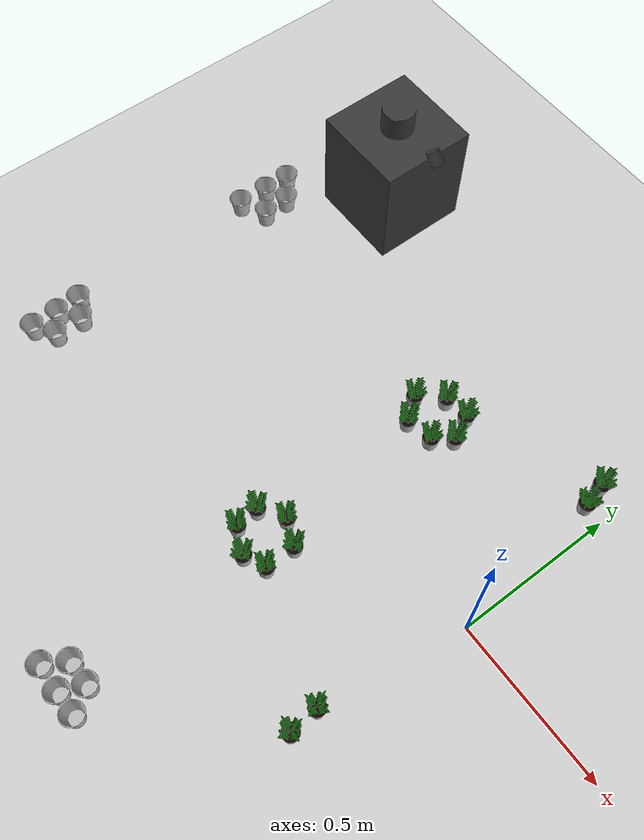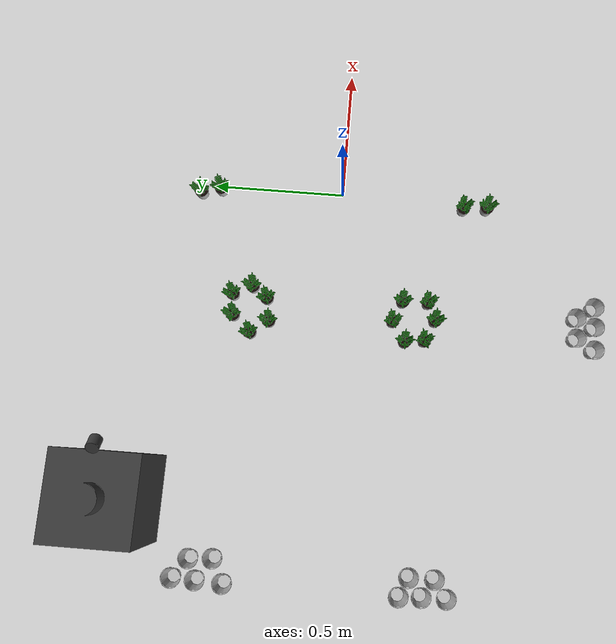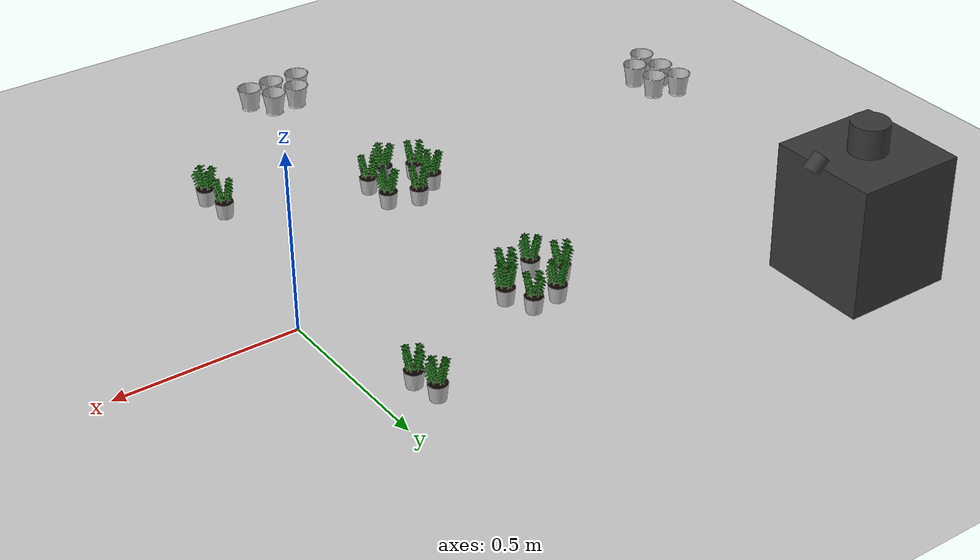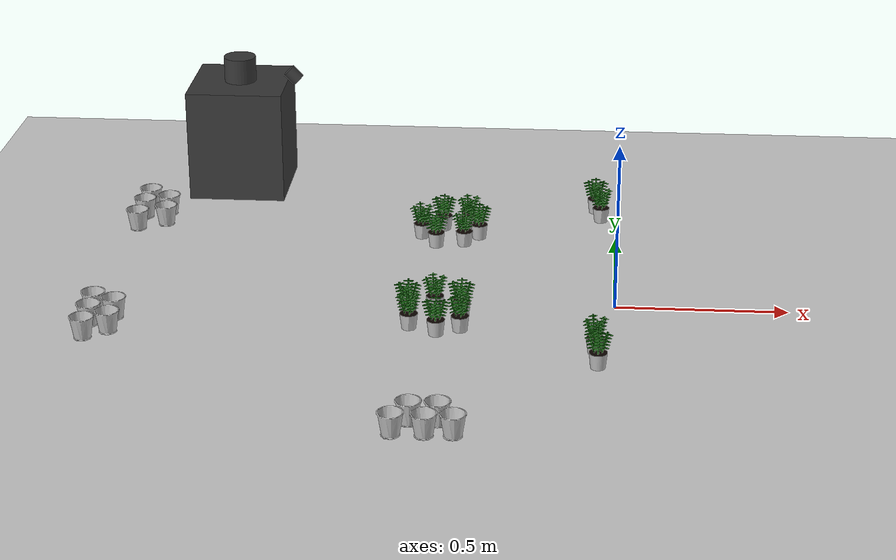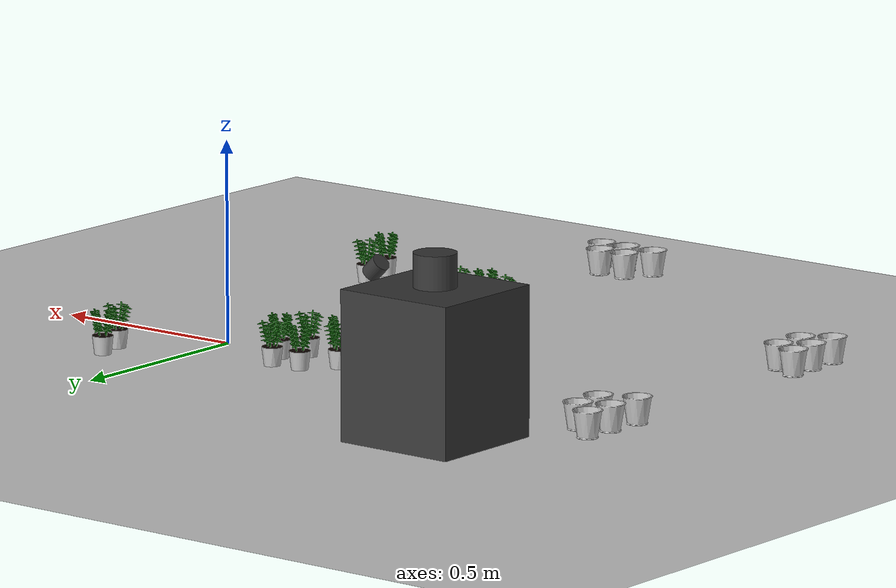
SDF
<sdf version="1.10">
 <world name="empty">
  <model name="ground_plane">
   <static>true</static>
   <link name="link">
    <collision name="collision">
     <geometry><plane><normal>0 0 1</normal><size>100 100</size></plane></geometry>
    </collision>
    <visual name="visual">
     <geometry><plane><normal>0 0 1</normal><size>100 100</size></plane></geometry>
     <material>
      <ambient>0.800000012 0.800000012 0.800000012 1</ambient>
      <diffuse>0.800000012 0.800000012 0.800000012 1</diffuse>
      <specular>0.800000012 0.800000012 0.800000012 1</specular>
     </material>
    </visual>
    <inertial>
     <mass>1</mass>
     <inertia><ixx>1</ixx><ixy>0</ixy><ixz>0</ixz><iyy>1</iyy><iyz>0</iyz><izz>1</izz></inertia>
    </inertial>
   </link>
  </model>
  <model name="pot">
   <link name="link">
    <pose>0 0 0.10000000000000001 0 0 0</pose>
    <collision name="collision">
     <geometry>
      <mesh>
       <uri>file:///home/arusso/dev/coupe/ws_0/install/champi_simulator/share/champi_simulator/models/pot/meshes/model.dae</uri>
      </mesh>
     </geometry>
    </collision>
    <visual name="visual">
     <geometry>
      <mesh>
       <uri>file:///home/arusso/dev/coupe/ws_0/install/champi_simulator/share/champi_simulator/models/pot/meshes/model.dae</uri>
      </mesh>
     </geometry>
    </visual>
    <inertial>
     <mass>1</mass>
     <inertia><ixx>1</ixx><ixy>0</ixy><ixz>0</ixz><iyy>1</iyy><iyz>0</iyz><izz>1</izz></inertia>
    </inertial>
   </link>
   <pose>-0.403499 -0.95184500000000005 -0.019989 -0.00069220900000000005 0.00014280300000000005 -4.0547600000000025e-08</pose>
   <static>false</static>
  </model>
  <model name="pot_0">
   <link name="link">
    <pose>0 0 0.10000000000000001 0 0 0</pose>
    <collision name="collision">
     <geometry>
      <mesh>
       <uri>file:///home/arusso/dev/coupe/ws_0/install/champi_simulator/share/champi_simulator/models/pot/meshes/model.dae</uri>
      </mesh>
     </geometry>
    </collision>
    <visual name="visual">
     <geometry>
      <mesh>
       <uri>file:///home/arusso/dev/coupe/ws_0/install/champi_simulator/share/champi_simulator/models/pot/meshes/model.dae</uri>
      </mesh>
     </geometry>
    </visual>
    <inertial>
     <mass>1</mass>
     <inertia><ixx>1</ixx><ixy>0</ixy><ixz>0</ixz><iyy>1</iyy><iyz>0</iyz><izz>1</izz></inertia>
    </inertial>
   </link>
   <pose>-0.47604400000000002 -0.95447199999999999 -0.019989099999999999 -0.00069144900000000001 0.00014281299999999999 -1.08879e-06</pose>
   <static>false</static>
  </model>
  <model name="pot_1">
   <link name="link">
    <pose>0 0 0.10000000000000001 0 0 0</pose>
    <collision name="collision">
     <geometry>
      <mesh>
       <uri>file:///home/arusso/dev/coupe/ws_0/install/champi_simulator/share/champi_simulator/models/pot/meshes/model.dae</uri>
      </mesh>
     </geometry>
    </collision>
    <visual name="visual">
     <geometry>
      <mesh>
       <uri>file:///home/arusso/dev/coupe/ws_0/install/champi_simulator/share/champi_simulator/models/pot/meshes/model.dae</uri>
      </mesh>
     </geometry>
    </visual>
    <inertial>
     <mass>1</mass>
     <inertia><ixx>1</ixx><ixy>0</ixy><ixz>0</ixz><iyy>1</iyy><iyz>0</iyz><izz>1</izz></inertia>
    </inertial>
   </link>
   <pose>-0.55947499999999994 -0.95512300000000006 -0.019989 -0.00069220900000000005 0.00014280300000000005 -4.0547600000000025e-08</pose>
   <static>false</static>
  </model>
  <model name="pot_2">
   <link name="link">
    <pose>0 0 0.10000000000000001 0 0 0</pose>
    <collision name="collision">
     <geometry>
      <mesh>
       <uri>file:///home/arusso/dev/coupe/ws_0/install/champi_simulator/share/champi_simulator/models/pot/meshes/model.dae</uri>
      </mesh>
     </geometry>
    </collision>
    <visual name="visual">
     <geometry>
      <mesh>
       <uri>file:///home/arusso/dev/coupe/ws_0/install/champi_simulator/share/champi_simulator/models/pot/meshes/model.dae</uri>
      </mesh>
     </geometry>
    </visual>
    <inertial>
     <mass>1</mass>
     <inertia><ixx>1</ixx><ixy>0</ixy><ixz>0</ixz><iyy>1</iyy><iyz>0</iyz><izz>1</izz></inertia>
    </inertial>
   </link>
   <pose>-0.52089099999999999 -0.88975899999999997 -0.019989 -0.00069220900000000005 0.00014280300000000005 -4.0547600000000025e-08</pose>
   <static>false</static>
  </model>
  <model name="pot_3">
   <link name="link">
    <pose>0 0 0.10000000000000001 0 0 0</pose>
    <collision name="collision">
     <geometry>
      <mesh>
       <uri>file:///home/arusso/dev/coupe/ws_0/install/champi_simulator/share/champi_simulator/models/pot/meshes/model.dae</uri>
      </mesh>
     </geometry>
    </collision>
    <visual name="visual">
     <geometry>
      <mesh>
       <uri>file:///home/arusso/dev/coupe/ws_0/install/champi_simulator/share/champi_simulator/models/pot/meshes/model.dae</uri>
      </mesh>
     </geometry>
    </visual>
    <inertial>
     <mass>1</mass>
     <inertia><ixx>1</ixx><ixy>0</ixy><ixz>0</ixz><iyy>1</iyy><iyz>0</iyz><izz>1</izz></inertia>
    </inertial>
   </link>
   <pose>-0.446768 -0.88781500000000002 -0.019989 -0.00069220900000000005 0.00014280300000000005 -4.0547600000000025e-08</pose>
   <static>false</static>
  </model>
  <model name="pot_5">
   <link name="link">
    <pose>0 0 0.10000000000000001 0 0 0</pose>
    <collision name="collision">
     <geometry>
      <mesh>
       <uri>file:///home/arusso/dev/coupe/ws_0/install/champi_simulator/share/champi_simulator/models/pot/meshes/model.dae</uri>
      </mesh>
     </geometry>
    </collision>
    <visual name="visual">
     <geometry>
      <mesh>
       <uri>file:///home/arusso/dev/coupe/ws_0/install/champi_simulator/share/champi_simulator/models/pot/meshes/model.dae</uri>
      </mesh>
     </geometry>
    </visual>
    <inertial>
     <mass>1</mass>
     <inertia><ixx>1</ixx><ixy>0</ixy><ixz>0</ixz><iyy>1</iyy><iyz>0</iyz><izz>1</izz></inertia>
    </inertial>
   </link>
   <pose>-1.39436 -0.33459699999999998 -0.019989 -0.00069220900000000005 0.00014280300000000005 -4.0547600000000025e-08</pose>
   <static>false</static>
  </model>
  <model name="pot_6">
   <link name="link">
    <pose>0 0 0.10000000000000001 0 0 0</pose>
    <collision name="collision">
     <geometry>
      <mesh>
       <uri>file:///home/arusso/dev/coupe/ws_0/install/champi_simulator/share/champi_simulator/models/pot/meshes/model.dae</uri>
      </mesh>
     </geometry>
    </collision>
    <visual name="visual">
     <geometry>
      <mesh>
       <uri>file:///home/arusso/dev/coupe/ws_0/install/champi_simulator/share/champi_simulator/models/pot/meshes/model.dae</uri>
      </mesh>
     </geometry>
    </visual>
    <inertial>
     <mass>1</mass>
     <inertia><ixx>1</ixx><ixy>0</ixy><ixz>0</ixz><iyy>1</iyy><iyz>0</iyz><izz>1</izz></inertia>
    </inertial>
   </link>
   <pose>-1.3934500000000001 -0.422989 -0.019989 -0.00069220900000000005 0.00014280300000000005 -4.0547600000000025e-08</pose>
   <static>false</static>
  </model>
  <model name="pot_7">
   <link name="link">
    <pose>0 0 0.10000000000000001 0 0 0</pose>
    <collision name="collision">
     <geometry>
      <mesh>
       <uri>file:///home/arusso/dev/coupe/ws_0/install/champi_simulator/share/champi_simulator/models/pot/meshes/model.dae</uri>
      </mesh>
     </geometry>
    </collision>
    <visual name="visual">
     <geometry>
      <mesh>
       <uri>file:///home/arusso/dev/coupe/ws_0/install/champi_simulator/share/champi_simulator/models/pot/meshes/model.dae</uri>
      </mesh>
     </geometry>
    </visual>
    <inertial>
     <mass>1</mass>
     <inertia><ixx>1</ixx><ixy>0</ixy><ixz>0</ixz><iyy>1</iyy><iyz>0</iyz><izz>1</izz></inertia>
    </inertial>
   </link>
   <pose>-1.45492 -0.38141199999999997 -0.0199889 -0.00069295299999999995 0.00014295299999999994 0.00021204300000000006</pose>
   <static>false</static>
  </model>
  <model name="pot_8">
   <link name="link">
    <pose>0 0 0.10000000000000001 0 0 0</pose>
    <collision name="collision">
     <geometry>
      <mesh>
       <uri>file:///home/arusso/dev/coupe/ws_0/install/champi_simulator/share/champi_simulator/models/pot/meshes/model.dae</uri>
      </mesh>
     </geometry>
    </collision>
    <visual name="visual">
     <geometry>
      <mesh>
       <uri>file:///home/arusso/dev/coupe/ws_0/install/champi_simulator/share/champi_simulator/models/pot/meshes/model.dae</uri>
      </mesh>
     </geometry>
    </visual>
    <inertial>
     <mass>1</mass>
     <inertia><ixx>1</ixx><ixy>0</ixy><ixz>0</ixz><iyy>1</iyy><iyz>0</iyz><izz>1</izz></inertia>
    </inertial>
   </link>
   <pose>-1.45387 -0.46632400000000002 -0.019989 -0.00069220900000000005 0.00014280300000000005 -4.0547600000000025e-08</pose>
   <static>false</static>
  </model>
  <model name="pot_9">
   <link name="link">
    <pose>0 0 0.10000000000000001 0 0 0</pose>
    <collision name="collision">
     <geometry>
      <mesh>
       <uri>file:///home/arusso/dev/coupe/ws_0/install/champi_simulator/share/champi_simulator/models/pot/meshes/model.dae</uri>
      </mesh>
     </geometry>
    </collision>
    <visual name="visual">
     <geometry>
      <mesh>
       <uri>file:///home/arusso/dev/coupe/ws_0/install/champi_simulator/share/champi_simulator/models/pot/meshes/model.dae</uri>
      </mesh>
     </geometry>
    </visual>
    <inertial>
     <mass>1</mass>
     <inertia><ixx>1</ixx><ixy>0</ixy><ixz>0</ixz><iyy>1</iyy><iyz>0</iyz><izz>1</izz></inertia>
    </inertial>
   </link>
   <pose>-1.4593499999999999 -0.30384 -0.019989 -0.00069220900000000005 0.00014280300000000005 -4.0547600000000025e-08</pose>
   <static>false</static>
  </model>
  <model name="pot_10">
   <link name="link">
    <pose>0 0 0.10000000000000001 0 0 0</pose>
    <collision name="collision">
     <geometry>
      <mesh>
       <uri>file:///home/arusso/dev/coupe/ws_0/install/champi_simulator/share/champi_simulator/models/pot/meshes/model.dae</uri>
      </mesh>
     </geometry>
    </collision>
    <visual name="visual">
     <geometry>
      <mesh>
       <uri>file:///home/arusso/dev/coupe/ws_0/install/champi_simulator/share/champi_simulator/models/pot/meshes/model.dae</uri>
      </mesh>
     </geometry>
    </visual>
    <inertial>
     <mass>1</mass>
     <inertia><ixx>1</ixx><ixy>0</ixy><ixz>0</ixz><iyy>1</iyy><iyz>0</iyz><izz>1</izz></inertia>
    </inertial>
   </link>
   <pose>-1.46313 0.29849799999999999 -0.019989 -0.00069220900000000005 0.00014280300000000005 -4.0547600000000025e-08</pose>
   <static>false</static>
  </model>
  <model name="pot_11">
   <link name="link">
    <pose>0 0 0.10000000000000001 0 0 0</pose>
    <collision name="collision">
     <geometry>
      <mesh>
       <uri>file:///home/arusso/dev/coupe/ws_0/install/champi_simulator/share/champi_simulator/models/pot/meshes/model.dae</uri>
      </mesh>
     </geometry>
    </collision>
    <visual name="visual">
     <geometry>
      <mesh>
       <uri>file:///home/arusso/dev/coupe/ws_0/install/champi_simulator/share/champi_simulator/models/pot/meshes/model.dae</uri>
      </mesh>
     </geometry>
    </visual>
    <inertial>
     <mass>1</mass>
     <inertia><ixx>1</ixx><ixy>0</ixy><ixz>0</ixz><iyy>1</iyy><iyz>0</iyz><izz>1</izz></inertia>
    </inertial>
   </link>
   <pose>-1.4589799999999999 0.39272800000000002 -0.0199889 -0.00069269900000000018 0.00014398599999999995 -0.0041653999999999997</pose>
   <static>false</static>
  </model>
  <model name="pot_12">
   <link name="link">
    <pose>0 0 0.10000000000000001 0 0 0</pose>
    <collision name="collision">
     <geometry>
      <mesh>
       <uri>file:///home/arusso/dev/coupe/ws_0/install/champi_simulator/share/champi_simulator/models/pot/meshes/model.dae</uri>
      </mesh>
     </geometry>
    </collision>
    <visual name="visual">
     <geometry>
      <mesh>
       <uri>file:///home/arusso/dev/coupe/ws_0/install/champi_simulator/share/champi_simulator/models/pot/meshes/model.dae</uri>
      </mesh>
     </geometry>
    </visual>
    <inertial>
     <mass>1</mass>
     <inertia><ixx>1</ixx><ixy>0</ixy><ixz>0</ixz><iyy>1</iyy><iyz>0</iyz><izz>1</izz></inertia>
    </inertial>
   </link>
   <pose>-1.4570399999999999 0.47462300000000002 -0.019989 -0.00069220900000000005 0.00014280300000000005 -4.0547600000000025e-08</pose>
   <static>false</static>
  </model>
  <model name="pot_13">
   <link name="link">
    <pose>0 0 0.10000000000000001 0 0 0</pose>
    <collision name="collision">
     <geometry>
      <mesh>
       <uri>file:///home/arusso/dev/coupe/ws_0/install/champi_simulator/share/champi_simulator/models/pot/meshes/model.dae</uri>
      </mesh>
     </geometry>
    </collision>
    <visual name="visual">
     <geometry>
      <mesh>
       <uri>file:///home/arusso/dev/coupe/ws_0/install/champi_simulator/share/champi_simulator/models/pot/meshes/model.dae</uri>
      </mesh>
     </geometry>
    </visual>
    <inertial>
     <mass>1</mass>
     <inertia><ixx>1</ixx><ixy>0</ixy><ixz>0</ixz><iyy>1</iyy><iyz>0</iyz><izz>1</izz></inertia>
    </inertial>
   </link>
   <pose>-1.38368 0.339557 -0.019989 -0.00069220900000000005 0.00014280300000000005 -4.0547600000000025e-08</pose>
   <static>false</static>
  </model>
  <model name="pot_14">
   <link name="link">
    <pose>0 0 0.10000000000000001 0 0 0</pose>
    <collision name="collision">
     <geometry>
      <mesh>
       <uri>file:///home/arusso/dev/coupe/ws_0/install/champi_simulator/share/champi_simulator/models/pot/meshes/model.dae</uri>
      </mesh>
     </geometry>
    </collision>
    <visual name="visual">
     <geometry>
      <mesh>
       <uri>file:///home/arusso/dev/coupe/ws_0/install/champi_simulator/share/champi_simulator/models/pot/meshes/model.dae</uri>
      </mesh>
     </geometry>
    </visual>
    <inertial>
     <mass>1</mass>
     <inertia><ixx>1</ixx><ixy>0</ixy><ixz>0</ixz><iyy>1</iyy><iyz>0</iyz><izz>1</izz></inertia>
    </inertial>
   </link>
   <pose>-1.3895200000000001 0.42288199999999998 -0.019989 -0.00069220900000000005 0.00014280300000000005 -4.0547600000000025e-08</pose>
   <static>false</static>
  </model>
  <model name="plante_fragile_4">
   <link name="link">
    <pose>0 0 0.10000000000000001 0 0 0</pose>
    <collision name="collision">
     <geometry>
      <mesh>
       <uri>file:///home/arusso/dev/coupe/ws_0/install/champi_simulator/share/champi_simulator/models/plante_fragile/meshes/model.dae</uri>
      </mesh>
     </geometry>
    </collision>
    <visual name="visual">
     <geometry>
      <mesh>
       <uri>file:///home/arusso/dev/coupe/ws_0/install/champi_simulator/share/champi_simulator/models/plante_fragile/meshes/model.dae</uri>
      </mesh>
     </geometry>
    </visual>
    <inertial>
     <mass>1</mass>
     <inertia><ixx>1</ixx><ixy>0</ixy><ixz>0</ixz><iyy>1</iyy><iyz>0</iyz><izz>1</izz></inertia>
    </inertial>
   </link>
   <pose>-0.047226600000000001 -0.54815100000000005 -0.019975900000000001 3.8603699999999984e-05 -0.0020328400000000002 -1.2490100000000001e-06</pose>
   <static>false</static>
  </model>
  <model name="plante_resistante_4">
   <link name="link">
    <pose>0 0 0.10000000000000001 0 0 0</pose>
    <collision name="collision">
     <geometry>
      <mesh>
       <uri>file:///home/arusso/dev/coupe/ws_0/install/champi_simulator/share/champi_simulator/models/plante_resistante/meshes/model.dae</uri>
      </mesh>
     </geometry>
    </collision>
    <visual name="visual">
     <geometry>
      <mesh>
       <uri>file:///home/arusso/dev/coupe/ws_0/install/champi_simulator/share/champi_simulator/models/plante_resistante/meshes/model.dae</uri>
      </mesh>
     </geometry>
    </visual>
    <inertial>
     <mass>1</mass>
     <inertia><ixx>1</ixx><ixy>0</ixy><ixz>0</ixz><iyy>1</iyy><iyz>0</iyz><izz>1</izz></inertia>
    </inertial>
   </link>
   <pose>-0.055409600000000003 -0.46071299999999998 -0.019975900000000001 3.8603699999999984e-05 -0.0020328400000000002 -1.2490100000000001e-06</pose>
   <static>false</static>
  </model>
  <model name="plante_resistante_5">
   <link name="link">
    <pose>0 0 0.10000000000000001 0 0 0</pose>
    <collision name="collision">
     <geometry>
      <mesh>
       <uri>file:///home/arusso/dev/coupe/ws_0/install/champi_simulator/share/champi_simulator/models/plante_resistante/meshes/model.dae</uri>
      </mesh>
     </geometry>
    </collision>
    <visual name="visual">
     <geometry>
      <mesh>
       <uri>file:///home/arusso/dev/coupe/ws_0/install/champi_simulator/share/champi_simulator/models/plante_resistante/meshes/model.dae</uri>
      </mesh>
     </geometry>
    </visual>
    <inertial>
     <mass>1</mass>
     <inertia><ixx>1</ixx><ixy>0</ixy><ixz>0</ixz><iyy>1</iyy><iyz>0</iyz><izz>1</izz></inertia>
    </inertial>
   </link>
   <pose>-0.50612100000000004 -0.22291 -0.019975900000000001 3.8603699999999984e-05 -0.0020328400000000002 -1.2490100000000001e-06</pose>
   <static>false</static>
  </model>
  <model name="plante_resistante_6">
   <link name="link">
    <pose>0 0 0.10000000000000001 0 0 0</pose>
    <collision name="collision">
     <geometry>
      <mesh>
       <uri>file:///home/arusso/dev/coupe/ws_0/install/champi_simulator/share/champi_simulator/models/plante_resistante/meshes/model.dae</uri>
      </mesh>
     </geometry>
    </collision>
    <visual name="visual">
     <geometry>
      <mesh>
       <uri>file:///home/arusso/dev/coupe/ws_0/install/champi_simulator/share/champi_simulator/models/plante_resistante/meshes/model.dae</uri>
      </mesh>
     </geometry>
    </visual>
    <inertial>
     <mass>1</mass>
     <inertia><ixx>1</ixx><ixy>0</ixy><ixz>0</ixz><iyy>1</iyy><iyz>0</iyz><izz>1</izz></inertia>
    </inertial>
   </link>
   <pose>-0.56962599999999997 -0.34252899999999997 -0.019975900000000001 3.8603699999999984e-05 -0.0020328400000000002 -1.2490100000000001e-06</pose>
   <static>false</static>
  </model>
  <model name="plante_resistante_7">
   <link name="link">
    <pose>0 0 0.10000000000000001 0 0 0</pose>
    <collision name="collision">
     <geometry>
      <mesh>
       <uri>file:///home/arusso/dev/coupe/ws_0/install/champi_simulator/share/champi_simulator/models/plante_resistante/meshes/model.dae</uri>
      </mesh>
     </geometry>
    </collision>
    <visual name="visual">
     <geometry>
      <mesh>
       <uri>file:///home/arusso/dev/coupe/ws_0/install/champi_simulator/share/champi_simulator/models/plante_resistante/meshes/model.dae</uri>
      </mesh>
     </geometry>
    </visual>
    <inertial>
     <mass>1</mass>
     <inertia><ixx>1</ixx><ixy>0</ixy><ixz>0</ixz><iyy>1</iyy><iyz>0</iyz><izz>1</izz></inertia>
    </inertial>
   </link>
   <pose>-0.42772300000000002 -0.348547 -0.019975900000000001 3.8603699999999984e-05 -0.0020328400000000002 -1.2490100000000001e-06</pose>
   <static>false</static>
  </model>
  <model name="plante_fragile_5">
   <link name="link">
    <pose>0 0 0.10000000000000001 0 0 0</pose>
    <collision name="collision">
     <geometry>
      <mesh>
       <uri>file:///home/arusso/dev/coupe/ws_0/install/champi_simulator/share/champi_simulator/models/plante_fragile/meshes/model.dae</uri>
      </mesh>
     </geometry>
    </collision>
    <visual name="visual">
     <geometry>
      <mesh>
       <uri>file:///home/arusso/dev/coupe/ws_0/install/champi_simulator/share/champi_simulator/models/plante_fragile/meshes/model.dae</uri>
      </mesh>
     </geometry>
    </visual>
    <inertial>
     <mass>1</mass>
     <inertia><ixx>1</ixx><ixy>0</ixy><ixz>0</ixz><iyy>1</iyy><iyz>0</iyz><izz>1</izz></inertia>
    </inertial>
   </link>
   <pose>-0.42964000000000002 -0.25478299999999998 -0.019975900000000001 3.8603699999999984e-05 -0.0020328400000000002 -1.2490100000000001e-06</pose>
   <static>false</static>
  </model>
  <model name="plante_fragile_6">
   <link name="link">
    <pose>0 0 0.10000000000000001 0 0 0</pose>
    <collision name="collision">
     <geometry>
      <mesh>
       <uri>file:///home/arusso/dev/coupe/ws_0/install/champi_simulator/share/champi_simulator/models/plante_fragile/meshes/model.dae</uri>
      </mesh>
     </geometry>
    </collision>
    <visual name="visual">
     <geometry>
      <mesh>
       <uri>file:///home/arusso/dev/coupe/ws_0/install/champi_simulator/share/champi_simulator/models/plante_fragile/meshes/model.dae</uri>
      </mesh>
     </geometry>
    </visual>
    <inertial>
     <mass>1</mass>
     <inertia><ixx>1</ixx><ixy>0</ixy><ixz>0</ixz><iyy>1</iyy><iyz>0</iyz><izz>1</izz></inertia>
    </inertial>
   </link>
   <pose>-0.57788600000000001 -0.27070899999999998 -0.019975900000000001 3.8603699999999984e-05 -0.0020328400000000002 -1.2490100000000001e-06</pose>
   <static>false</static>
  </model>
  <model name="plante_fragile_7">
   <link name="link">
    <pose>0 0 0.10000000000000001 0 0 0</pose>
    <collision name="collision">
     <geometry>
      <mesh>
       <uri>file:///home/arusso/dev/coupe/ws_0/install/champi_simulator/share/champi_simulator/models/plante_fragile/meshes/model.dae</uri>
      </mesh>
     </geometry>
    </collision>
    <visual name="visual">
     <geometry>
      <mesh>
       <uri>file:///home/arusso/dev/coupe/ws_0/install/champi_simulator/share/champi_simulator/models/plante_fragile/meshes/model.dae</uri>
      </mesh>
     </geometry>
    </visual>
    <inertial>
     <mass>1</mass>
     <inertia><ixx>1</ixx><ixy>0</ixy><ixz>0</ixz><iyy>1</iyy><iyz>0</iyz><izz>1</izz></inertia>
    </inertial>
   </link>
   <pose>-0.49232500000000001 -0.37765300000000002 -0.019975900000000001 3.8603699999999984e-05 -0.0020328400000000002 -1.2490100000000001e-06</pose>
   <static>false</static>
  </model>
  <model name="plante_fragile_8">
   <link name="link">
    <pose>0 0 0.10000000000000001 0 0 0</pose>
    <collision name="collision">
     <geometry>
      <mesh>
       <uri>file:///home/arusso/dev/coupe/ws_0/install/champi_simulator/share/champi_simulator/models/plante_fragile/meshes/model.dae</uri>
      </mesh>
     </geometry>
    </collision>
    <visual name="visual">
     <geometry>
      <mesh>
       <uri>file:///home/arusso/dev/coupe/ws_0/install/champi_simulator/share/champi_simulator/models/plante_fragile/meshes/model.dae</uri>
      </mesh>
     </geometry>
    </visual>
    <inertial>
     <mass>1</mass>
     <inertia><ixx>1</ixx><ixy>0</ixy><ixz>0</ixz><iyy>1</iyy><iyz>0</iyz><izz>1</izz></inertia>
    </inertial>
   </link>
   <pose>-0.41444700000000001 0.299064 -0.019975900000000001 3.8603699999999984e-05 -0.0020328400000000002 -1.2490100000000001e-06</pose>
   <static>false</static>
  </model>
  <model name="plante_fragile_9">
   <link name="link">
    <pose>0 0 0.10000000000000001 0 0 0</pose>
    <collision name="collision">
     <geometry>
      <mesh>
       <uri>file:///home/arusso/dev/coupe/ws_0/install/champi_simulator/share/champi_simulator/models/plante_fragile/meshes/model.dae</uri>
      </mesh>
     </geometry>
    </collision>
    <visual name="visual">
     <geometry>
      <mesh>
       <uri>file:///home/arusso/dev/coupe/ws_0/install/champi_simulator/share/champi_simulator/models/plante_fragile/meshes/model.dae</uri>
      </mesh>
     </geometry>
    </visual>
    <inertial>
     <mass>1</mass>
     <inertia><ixx>1</ixx><ixy>0</ixy><ixz>0</ixz><iyy>1</iyy><iyz>0</iyz><izz>1</izz></inertia>
    </inertial>
   </link>
   <pose>-0.53933500000000001 0.229299 -0.019975900000000001 3.8603699999999984e-05 -0.0020328400000000002 -1.2490100000000001e-06</pose>
   <static>false</static>
  </model>
  <model name="plante_resistante_8">
   <link name="link">
    <pose>0 0 0.10000000000000001 0 0 0</pose>
    <collision name="collision">
     <geometry>
      <mesh>
       <uri>file:///home/arusso/dev/coupe/ws_0/install/champi_simulator/share/champi_simulator/models/plante_resistante/meshes/model.dae</uri>
      </mesh>
     </geometry>
    </collision>
    <visual name="visual">
     <geometry>
      <mesh>
       <uri>file:///home/arusso/dev/coupe/ws_0/install/champi_simulator/share/champi_simulator/models/plante_resistante/meshes/model.dae</uri>
      </mesh>
     </geometry>
    </visual>
    <inertial>
     <mass>1</mass>
     <inertia><ixx>1</ixx><ixy>0</ixy><ixz>0</ixz><iyy>1</iyy><iyz>0</iyz><izz>1</izz></inertia>
    </inertial>
   </link>
   <pose>-0.45570100000000002 0.24329899999999999 -0.019975900000000001 3.8603699999999984e-05 -0.0020328400000000002 -1.2490100000000001e-06</pose>
   <static>false</static>
  </model>
  <model name="plante_resistante_9">
   <link name="link">
    <pose>0 0 0.10000000000000001 0 0 0</pose>
    <collision name="collision">
     <geometry>
      <mesh>
       <uri>file:///home/arusso/dev/coupe/ws_0/install/champi_simulator/share/champi_simulator/models/plante_resistante/meshes/model.dae</uri>
      </mesh>
     </geometry>
    </collision>
    <visual name="visual">
     <geometry>
      <mesh>
       <uri>file:///home/arusso/dev/coupe/ws_0/install/champi_simulator/share/champi_simulator/models/plante_resistante/meshes/model.dae</uri>
      </mesh>
     </geometry>
    </visual>
    <inertial>
     <mass>1</mass>
     <inertia><ixx>1</ixx><ixy>0</ixy><ixz>0</ixz><iyy>1</iyy><iyz>0</iyz><izz>1</izz></inertia>
    </inertial>
   </link>
   <pose>-0.58720399999999995 0.29427700000000001 -0.019975900000000001 3.8603699999999984e-05 -0.0020328400000000002 -1.2490100000000001e-06</pose>
   <static>false</static>
  </model>
  <model name="plante_resistante_10">
   <link name="link">
    <pose>0 0 0.10000000000000001 0 0 0</pose>
    <collision name="collision">
     <geometry>
      <mesh>
       <uri>file:///home/arusso/dev/coupe/ws_0/install/champi_simulator/share/champi_simulator/models/plante_resistante/meshes/model.dae</uri>
      </mesh>
     </geometry>
    </collision>
    <visual name="visual">
     <geometry>
      <mesh>
       <uri>file:///home/arusso/dev/coupe/ws_0/install/champi_simulator/share/champi_simulator/models/plante_resistante/meshes/model.dae</uri>
      </mesh>
     </geometry>
    </visual>
    <inertial>
     <mass>1</mass>
     <inertia><ixx>1</ixx><ixy>0</ixy><ixz>0</ixz><iyy>1</iyy><iyz>0</iyz><izz>1</izz></inertia>
    </inertial>
   </link>
   <pose>-0.44851200000000002 0.36962699999999998 -0.019975900000000001 3.8603699999999984e-05 -0.0020328400000000002 -1.2490100000000001e-06</pose>
   <static>false</static>
  </model>
  <model name="plante_fragile_10">
   <link name="link">
    <pose>0 0 0.10000000000000001 0 0 0</pose>
    <collision name="collision">
     <geometry>
      <mesh>
       <uri>file:///home/arusso/dev/coupe/ws_0/install/champi_simulator/share/champi_simulator/models/plante_fragile/meshes/model.dae</uri>
      </mesh>
     </geometry>
    </collision>
    <visual name="visual">
     <geometry>
      <mesh>
       <uri>file:///home/arusso/dev/coupe/ws_0/install/champi_simulator/share/champi_simulator/models/plante_fragile/meshes/model.dae</uri>
      </mesh>
     </geometry>
    </visual>
    <inertial>
     <mass>1</mass>
     <inertia><ixx>1</ixx><ixy>0</ixy><ixz>0</ixz><iyy>1</iyy><iyz>0</iyz><izz>1</izz></inertia>
    </inertial>
   </link>
   <pose>-0.525509 0.362126 -0.019975900000000001 3.8603699999999984e-05 -0.0020328400000000002 -1.2490100000000001e-06</pose>
   <static>false</static>
  </model>
  <model name="plante_fragile_13">
   <link name="link">
    <pose>0 0 0.10000000000000001 0 0 0</pose>
    <collision name="collision">
     <geometry>
      <mesh>
       <uri>file:///home/arusso/dev/coupe/ws_0/install/champi_simulator/share/champi_simulator/models/plante_fragile/meshes/model.dae</uri>
      </mesh>
     </geometry>
    </collision>
    <visual name="visual">
     <geometry>
      <mesh>
       <uri>file:///home/arusso/dev/coupe/ws_0/install/champi_simulator/share/champi_simulator/models/plante_fragile/meshes/model.dae</uri>
      </mesh>
     </geometry>
    </visual>
    <inertial>
     <mass>1</mass>
     <inertia><ixx>1</ixx><ixy>0</ixy><ixz>0</ixz><iyy>1</iyy><iyz>0</iyz><izz>1</izz></inertia>
    </inertial>
   </link>
   <pose>-0.063677399999999995 0.52873400000000004 -0.019975900000000001 3.8603699999999984e-05 -0.0020328400000000002 -1.2490100000000001e-06</pose>
   <static>false</static>
  </model>
  <model name="plante_resistante_12">
   <link name="link">
    <pose>0 0 0.10000000000000001 0 0 0</pose>
    <collision name="collision">
     <geometry>
      <mesh>
       <uri>file:///home/arusso/dev/coupe/ws_0/install/champi_simulator/share/champi_simulator/models/plante_resistante/meshes/model.dae</uri>
      </mesh>
     </geometry>
    </collision>
    <visual name="visual">
     <geometry>
      <mesh>
       <uri>file:///home/arusso/dev/coupe/ws_0/install/champi_simulator/share/champi_simulator/models/plante_resistante/meshes/model.dae</uri>
      </mesh>
     </geometry>
    </visual>
    <inertial>
     <mass>1</mass>
     <inertia><ixx>1</ixx><ixy>0</ixy><ixz>0</ixz><iyy>1</iyy><iyz>0</iyz><izz>1</izz></inertia>
    </inertial>
   </link>
   <pose>-0.046862300000000003 0.45608199999999999 -0.019975900000000001 3.8603699999999984e-05 -0.0020328400000000002 -1.2490100000000001e-06</pose>
   <static>false</static>
  </model>
  <model name="robot_01" canonical_link="base_link">
   <joint name="camera_joint" type="fixed">
    <parent>base_link</parent>
    <child>camera_link</child>
    <axis>
     <xyz>0 0 1</xyz>
     <limit>
      <lower>-inf</lower>
      <upper>inf</upper>
      <effort>inf</effort>
      <velocity>inf</velocity>
      <stiffness>100000000</stiffness>
      <dissipation>1</dissipation>
     </limit>
     <dynamics>
      <spring_reference>0</spring_reference>
      <spring_stiffness>0</spring_stiffness>
      <damping>0</damping>
      <friction>0</friction>
     </dynamics>
    </axis>
    <pose>2.7755599999999997e-17 0 0 0 0 0</pose>
   </joint>
   <link name="base_link">
    <collision name="body_collision">
     <pose relative_to="base_link">0 0 0.21451000000000001 0 0 0</pose>
     <geometry><box><size>0.29999999999999999 0.29999999999999999 0.42903000000000002</size></box></geometry>
    </collision>
    <inertial>
     <inertia>
      <ixx>0.25775999999999999</ixx>
      <ixy>0</ixy>
      <ixz>0</ixz>
      <iyy>0.25775999999999999</iyy>
      <iyz>0</iyz>
      <izz>0.072870000000000004</izz>
     </inertia>
     <pose>0 0 0.17916000000000001 0 0 0</pose>
     <mass>5</mass>
    </inertial>
    <visual name="body_visual">
     <material>
      <diffuse>0.215690002 0.215690002 0.215690002 1</diffuse>
      <specular>0.10588 0.10588 0.10588 0.498039991</specular>
      <emissive>0 0 0 1</emissive>
     </material>
     <pose relative_to="base_link">0 0 0.17499999999999999 0 0 0</pose>
     <geometry>
      <mesh>
       <uri>file:///home/arusso/dev/coupe/ws_0/install/champi_simulator/share/champi_simulator/models/robot_1/meshes/Cube.001.dae</uri>
       <scale>0.14999999999999999 0.14999999999999999 0.17499999999999999</scale>
      </mesh>
     </geometry>
    </visual>
   </link>
   <link name="camera_link">
    <pose>0.17000000000000001 0 0.37 0 0.78539999999999999 0</pose>
    <sensor name="camera_1" type="camera">
     <pose>2.7755599999999997e-17 0 0 0 0 0</pose>
     <topic>champi/sensors/camera_1</topic>
     <update_rate>0</update_rate>
     <enable_metrics>false</enable_metrics>
     <camera>
      <horizontal_fov>1.5708</horizontal_fov>
      <image><width>640</width><height>480</height><format>RGB_INT8</format><anti_aliasing>4</anti_aliasing></image>
      <camera_info_topic>__default__</camera_info_topic>
      <triggered>false</triggered>
      <clip><near>0.10000000000000001</near><far>100</far></clip>
      <save enabled="false"><path>__default__</path></save>
      <visibility_mask>4294967295</visibility_mask>
      <noise><type>none</type><mean>0</mean><stddev>0</stddev></noise>
      <distortion><k1>0</k1><k2>0</k2><k3>0</k3><p1>0</p1><p2>0</p2><center>0.5 0.5</center></distortion>
      <lens>
       <type>stereographic</type>
       <scale_to_hfov>true</scale_to_hfov>
       <cutoff_angle>1.5707963267948966</cutoff_angle>
       <env_texture_size>256</env_texture_size>
      </lens>
     </camera>
    </sensor>
    <collision name="camera_collision">
     <pose relative_to="camera_link">0 0 0 0 0 0</pose>
     <geometry><box><size>0.050310000000000001 0.050310000000000001 0.050310000000000001</size></box></geometry>
    </collision>
    <inertial>
     <inertia>
      <ixx>3.0000000000000001e-05</ixx>
      <ixy>0</ixy>
      <ixz>0</ixz>
      <iyy>3.0000000000000001e-05</iyy>
      <iyz>0</iyz>
      <izz>3.0000000000000001e-05</izz>
     </inertia>
     <mass>0.10000000000000001</mass>
    </inertial>
    <visual name="camera_visual">
     <material>
      <diffuse>0.215690002 0.215690002 0.215690002 1</diffuse>
      <specular>0.10588 0.10588 0.10588 0.498039991</specular>
      <emissive>0 0 0 1</emissive>
     </material>
     <pose relative_to="camera_link">0 0 0 0 0 0</pose>
     <geometry>
      <mesh>
       <uri>file:///home/arusso/dev/coupe/ws_0/install/champi_simulator/share/champi_simulator/models/robot_1/meshes/Cylinder.002.dae</uri>
       <scale>0.02188 0.02188 0.02188</scale>
      </mesh>
     </geometry>
    </visual>
   </link>
   <pose>-1.2 0.69999999999999996 0.080005000000000007 0 0 0</pose>
   <static>false</static>
  </model>
 </world>
</sdf>
